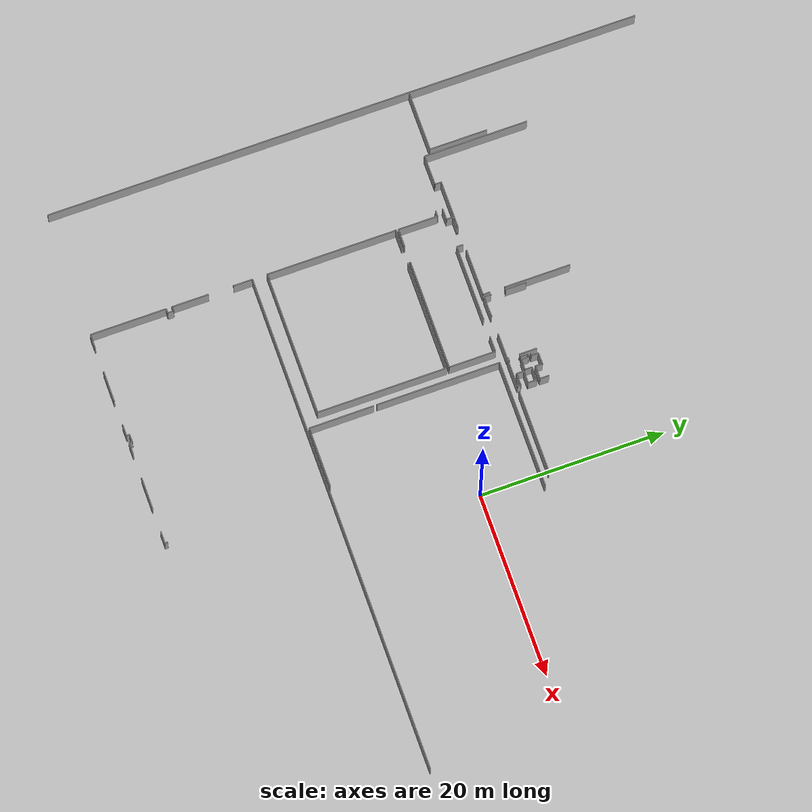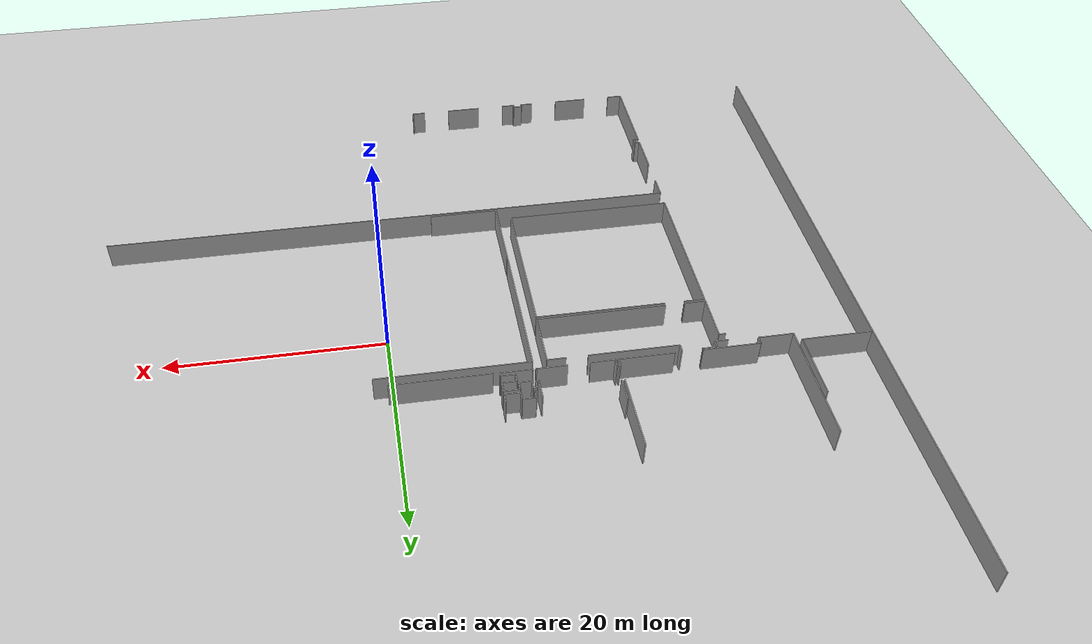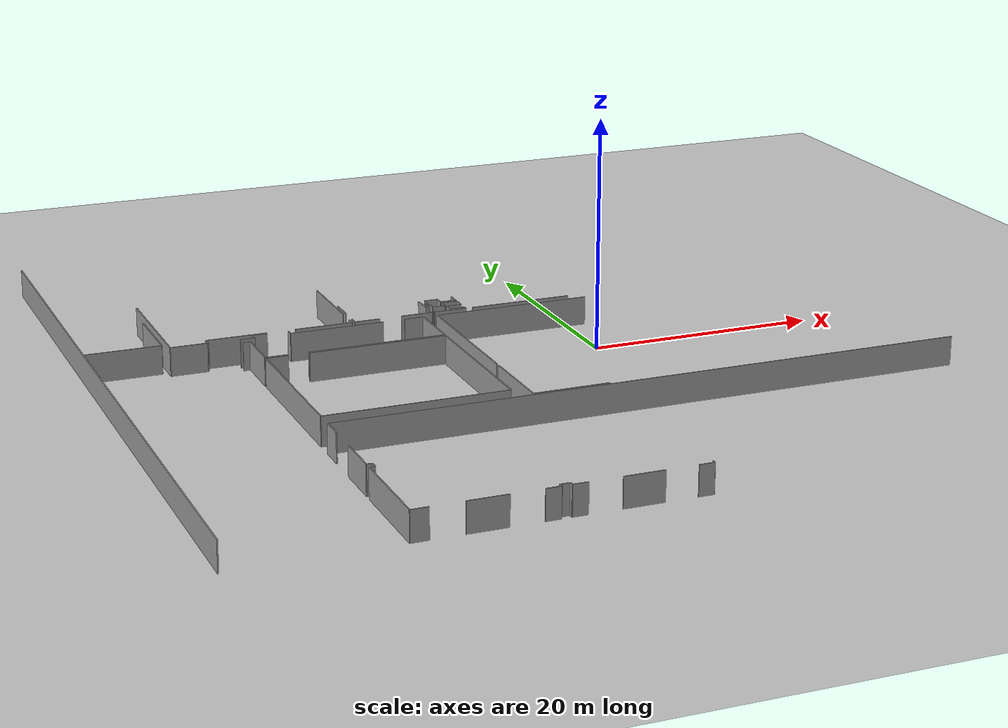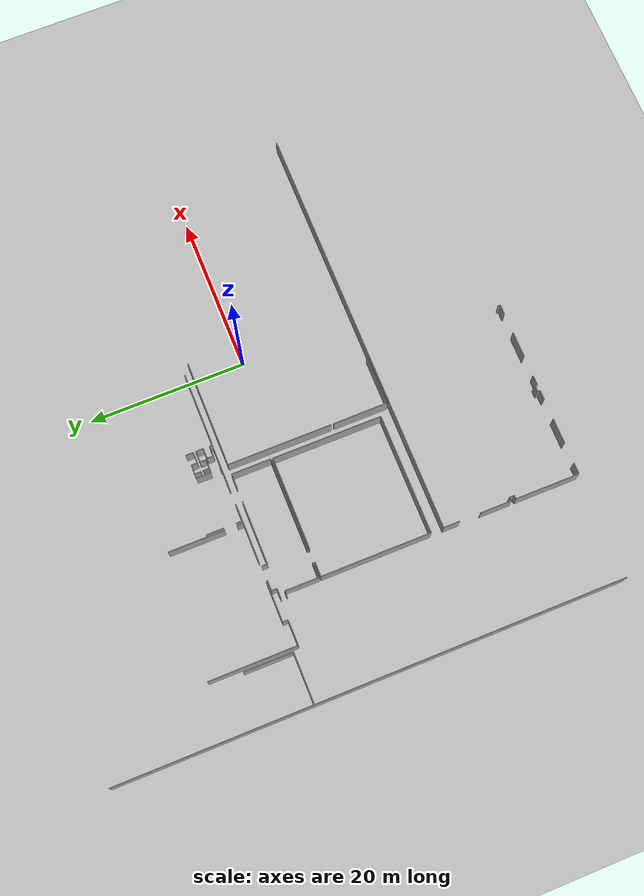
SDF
<sdf version="1.6">
 <world name="default">
  <model name="ground_plane">
   <static>1</static>
   <link name="link">
    <collision name="collision">
     <geometry><plane><normal>0 0 1</normal><size>100 100</size></plane></geometry>
     <surface><friction><ode><mu>100</mu><mu2>50</mu2></ode></friction></surface>
    </collision>
    <visual name="visual">
     <cast_shadows>0</cast_shadows>
     <geometry><plane><normal>0 0 1</normal><size>100 100</size></plane></geometry>
     <material>
      <script><uri>file://media/materials/scripts/gazebo.material</uri><name>Gazebo/Grey</name></script>
     </material>
    </visual>
   </link>
  </model>
  <model name="50052749">
   <static>1</static>
   <link name="Wall_5">
    <collision name="Wall_5_Collision">
     <geometry><box><size>6.41410580878 0.1 2.5</size></box></geometry>
     <pose>3.20705290439 0 1.25 0 0 0</pose>
    </collision>
    <visual name="Wall_5_Visual">
     <pose>3.20705290439 0 1.25 0 0 0</pose>
     <geometry><box><size>6.41410580878 0.1 2.5</size></box></geometry>
     <material>
      <script><uri>file://media/materials/scripts/gazebo.material</uri><name>Gazebo/Grey</name></script>
      <ambient>1 1 1 1</ambient>
     </material>
    </visual>
    <pose>0.105874715343 -24.942688178 0 0 0 0.0</pose>
   </link>
   <link name="Wall_6">
    <collision name="Wall_6_Collision">
     <geometry><box><size>6.22048821557 0.1 2.5</size></box></geometry>
     <pose>3.11024410779 0 1.25 0 0 0</pose>
    </collision>
    <visual name="Wall_6_Visual">
     <pose>3.11024410779 0 1.25 0 0 0</pose>
     <geometry><box><size>6.22048821557 0.1 2.5</size></box></geometry>
     <material>
      <script><uri>file://media/materials/scripts/gazebo.material</uri><name>Gazebo/Grey</name></script>
      <ambient>1 1 1 1</ambient>
     </material>
    </visual>
    <pose>6.51998052412 -24.942688178 0 0 0 1.57079632679</pose>
   </link>
   <link name="Wall_43">
    <collision name="Wall_43_Collision">
     <geometry><box><size>11.2463038947 0.1 2.5</size></box></geometry>
     <pose>5.62315194733 0 1.25 0 0 0</pose>
    </collision>
    <visual name="Wall_43_Visual">
     <pose>5.62315194733 0 1.25 0 0 0</pose>
     <geometry><box><size>11.2463038947 0.1 2.5</size></box></geometry>
     <material>
      <script><uri>file://media/materials/scripts/gazebo.material</uri><name>Gazebo/Grey</name></script>
      <ambient>1 1 1 1</ambient>
     </material>
    </visual>
    <pose>7.02817915777 -25.73846029 0 0 0 1.57079632679</pose>
   </link>
   <link name="Wall_56">
    <collision name="Wall_56_Collision">
     <geometry><box><size>5.21055754766 0.1 2.5</size></box></geometry>
     <pose>2.60527877383 0 1.25 0 0 0</pose>
    </collision>
    <visual name="Wall_56_Visual">
     <pose>2.60527877383 0 1.25 0 0 0</pose>
     <geometry><box><size>5.21055754766 0.1 2.5</size></box></geometry>
     <material>
      <script><uri>file://media/materials/scripts/gazebo.material</uri><name>Gazebo/Grey</name></script>
      <ambient>1 1 1 1</ambient>
     </material>
    </visual>
    <pose>15.4535241699 -25.0366440632 0 0 0 3.14159265359</pose>
   </link>
   <link name="Wall_57">
    <collision name="Wall_57_Collision">
     <geometry><box><size>0.687741863496 0.1 2.5</size></box></geometry>
     <pose>0.343870931748 0 1.25 0 0 0</pose>
    </collision>
    <visual name="Wall_57_Visual">
     <pose>0.343870931748 0 1.25 0 0 0</pose>
     <geometry><box><size>0.687741863496 0.1 2.5</size></box></geometry>
     <material>
      <script><uri>file://media/materials/scripts/gazebo.material</uri><name>Gazebo/Grey</name></script>
      <ambient>1 1 1 1</ambient>
     </material>
    </visual>
    <pose>10.2429666222 -25.0366440632 0 0 0 -1.57079632679</pose>
   </link>
   <link name="Wall_58">
    <collision name="Wall_58_Collision">
     <geometry><box><size>0.0724005538452 0.1 2.5</size></box></geometry>
     <pose>0.0362002769226 0 1.25 0 0 0</pose>
    </collision>
    <visual name="Wall_58_Visual">
     <pose>0.0362002769226 0 1.25 0 0 0</pose>
     <geometry><box><size>0.0724005538452 0.1 2.5</size></box></geometry>
     <material>
      <script><uri>file://media/materials/scripts/gazebo.material</uri><name>Gazebo/Grey</name></script>
      <ambient>1 1 1 1</ambient>
     </material>
    </visual>
    <pose>10.2429666222 -25.7243859267 0 0 0 3.14159265359</pose>
   </link>
   <link name="Wall_59">
    <collision name="Wall_59_Collision">
     <geometry><box><size>3.1424184291 0.1 2.5</size></box></geometry>
     <pose>1.57120921455 0 1.25 0 0 0</pose>
    </collision>
    <visual name="Wall_59_Visual">
     <pose>1.57120921455 0 1.25 0 0 0</pose>
     <geometry><box><size>3.1424184291 0.1 2.5</size></box></geometry>
     <material>
      <script><uri>file://media/materials/scripts/gazebo.material</uri><name>Gazebo/Grey</name></script>
      <ambient>1 1 1 1</ambient>
     </material>
    </visual>
    <pose>10.1705660684 -25.7243859267 0 0 0 -3.13711380689</pose>
   </link>
   <link name="Wall_186">
    <collision name="Wall_186_Collision">
     <geometry><box><size>8.99694167888 0.1 2.5</size></box></geometry>
     <pose>4.49847083944 0 1.25 0 0 0</pose>
    </collision>
    <visual name="Wall_186_Visual">
     <pose>4.49847083944 0 1.25 0 0 0</pose>
     <geometry><box><size>8.99694167888 0.1 2.5</size></box></geometry>
     <material>
      <script><uri>file://media/materials/scripts/gazebo.material</uri><name>Gazebo/Grey</name></script>
      <ambient>1 1 1 1</ambient>
     </material>
    </visual>
    <pose>33.9592832472 -25.0218089234 0 0 0 0.0</pose>
   </link>
   <link name="Wall_241">
    <collision name="Wall_241_Collision">
     <geometry><box><size>5.03456460767 0.1 2.5</size></box></geometry>
     <pose>2.51728230383 0 1.25 0 0 0</pose>
    </collision>
    <visual name="Wall_241_Visual">
     <pose>2.51728230383 0 1.25 0 0 0</pose>
     <geometry><box><size>5.03456460767 0.1 2.5</size></box></geometry>
     <material>
      <script><uri>file://media/materials/scripts/gazebo.material</uri><name>Gazebo/Grey</name></script>
      <ambient>1 1 1 1</ambient>
     </material>
    </visual>
    <pose>17.9761319085 -25.0414623137 0 0 0 0.0</pose>
   </link>
   <link name="Wall_242">
    <collision name="Wall_242_Collision">
     <geometry><box><size>0.802492303479 0.1 2.5</size></box></geometry>
     <pose>0.401246151739 0 1.25 0 0 0</pose>
    </collision>
    <visual name="Wall_242_Visual">
     <pose>0.401246151739 0 1.25 0 0 0</pose>
     <geometry><box><size>0.802492303479 0.1 2.5</size></box></geometry>
     <material>
      <script><uri>file://media/materials/scripts/gazebo.material</uri><name>Gazebo/Grey</name></script>
      <ambient>1 1 1 1</ambient>
     </material>
    </visual>
    <pose>23.0106965162 -25.0414623137 0 0 0 1.57079632679</pose>
   </link>
   <link name="Wall_243">
    <collision name="Wall_243_Collision">
     <geometry><box><size>7.1397596961 0.1 2.5</size></box></geometry>
     <pose>3.56987984805 0 1.25 0 0 0</pose>
    </collision>
    <visual name="Wall_243_Visual">
     <pose>3.56987984805 0 1.25 0 0 0</pose>
     <geometry><box><size>7.1397596961 0.1 2.5</size></box></geometry>
     <material>
      <script><uri>file://media/materials/scripts/gazebo.material</uri><name>Gazebo/Grey</name></script>
      <ambient>1 1 1 1</ambient>
     </material>
    </visual>
    <pose>23.0106965162 -22.6694883018 0 0 0 1.57079632679</pose>
   </link>
   <link name="Wall_248">
    <collision name="Wall_248_Collision">
     <geometry><box><size>0.776499109892 0.1 2.5</size></box></geometry>
     <pose>0.388249554946 0 1.25 0 0 0</pose>
    </collision>
    <visual name="Wall_248_Visual">
     <pose>0.388249554946 0 1.25 0 0 0</pose>
     <geometry><box><size>0.776499109892 0.1 2.5</size></box></geometry>
     <material>
      <script><uri>file://media/materials/scripts/gazebo.material</uri><name>Gazebo/Grey</name></script>
      <ambient>1 1 1 1</ambient>
     </material>
    </visual>
    <pose>23.2791237885 -25.0289095031 0 0 0 1.57079632679</pose>
   </link>
   <link name="Wall_249">
    <collision name="Wall_249_Collision">
     <geometry><box><size>2.23782377376 0.1 2.5</size></box></geometry>
     <pose>1.11891188688 0 1.25 0 0 0</pose>
    </collision>
    <visual name="Wall_249_Visual">
     <pose>1.11891188688 0 1.25 0 0 0</pose>
     <geometry><box><size>2.23782377376 0.1 2.5</size></box></geometry>
     <material>
      <script><uri>file://media/materials/scripts/gazebo.material</uri><name>Gazebo/Grey</name></script>
      <ambient>1 1 1 1</ambient>
     </material>
    </visual>
    <pose>23.2791237885 -22.6606125772 0 0 0 1.57079632679</pose>
   </link>
   <link name="Wall_252">
    <collision name="Wall_252_Collision">
     <geometry><box><size>1.88304838031 0.1 2.5</size></box></geometry>
     <pose>0.941524190154 0 1.25 0 0 0</pose>
    </collision>
    <visual name="Wall_252_Visual">
     <pose>0.941524190154 0 1.25 0 0 0</pose>
     <geometry><box><size>1.88304838031 0.1 2.5</size></box></geometry>
     <material>
      <script><uri>file://media/materials/scripts/gazebo.material</uri><name>Gazebo/Grey</name></script>
      <ambient>1 1 1 1</ambient>
     </material>
    </visual>
    <pose>30.2388330704 -21.7743080739 0 0 0 -1.57079632679</pose>
   </link>
   <link name="Wall_253">
    <collision name="Wall_253_Collision">
     <geometry><box><size>0.172315854073 0.1 2.5</size></box></geometry>
     <pose>0.0861579270365 0 1.25 0 0 0</pose>
    </collision>
    <visual name="Wall_253_Visual">
     <pose>0.0861579270365 0 1.25 0 0 0</pose>
     <geometry><box><size>0.172315854073 0.1 2.5</size></box></geometry>
     <material>
      <script><uri>file://media/materials/scripts/gazebo.material</uri><name>Gazebo/Grey</name></script>
      <ambient>1 1 1 1</ambient>
     </material>
    </visual>
    <pose>30.2388330704 -24.8234998757 0 0 0 -1.57079632679</pose>
   </link>
   <link name="Wall_254">
    <collision name="Wall_254_Collision">
     <geometry><box><size>2.78799190534 0.1 2.5</size></box></geometry>
     <pose>1.39399595267 0 1.25 0 0 0</pose>
    </collision>
    <visual name="Wall_254_Visual">
     <pose>1.39399595267 0 1.25 0 0 0</pose>
     <geometry><box><size>2.78799190534 0.1 2.5</size></box></geometry>
     <material>
      <script><uri>file://media/materials/scripts/gazebo.material</uri><name>Gazebo/Grey</name></script>
      <ambient>1 1 1 1</ambient>
     </material>
    </visual>
    <pose>30.2388330704 -24.9958157298 0 0 0 3.14159265359</pose>
   </link>
   <link name="Wall_255">
    <collision name="Wall_255_Collision">
     <geometry><box><size>2.20155525348 0.1 2.5</size></box></geometry>
     <pose>1.10077762674 0 1.25 0 0 0</pose>
    </collision>
    <visual name="Wall_255_Visual">
     <pose>1.10077762674 0 1.25 0 0 0</pose>
     <geometry><box><size>2.20155525348 0.1 2.5</size></box></geometry>
     <material>
      <script><uri>file://media/materials/scripts/gazebo.material</uri><name>Gazebo/Grey</name></script>
      <ambient>1 1 1 1</ambient>
     </material>
    </visual>
    <pose>25.4804302951 -24.9958157298 0 0 0 -3.12656008982</pose>
   </link>
   <link name="Wall_256">
    <collision name="Wall_256_Collision">
     <geometry><box><size>0.231910005224 0.1 2.5</size></box></geometry>
     <pose>0.115955002612 0 1.25 0 0 0</pose>
    </collision>
    <visual name="Wall_256_Visual">
     <pose>0.115955002612 0 1.25 0 0 0</pose>
     <geometry><box><size>0.231910005224 0.1 2.5</size></box></geometry>
     <material>
      <script><uri>file://media/materials/scripts/gazebo.material</uri><name>Gazebo/Grey</name></script>
      <ambient>1 1 1 1</ambient>
     </material>
    </visual>
    <pose>30.5360430498 -22.5680514488 0 0 0 0.0</pose>
   </link>
   <link name="Wall_257">
    <collision name="Wall_257_Collision">
     <geometry><box><size>0.782965709272 0.1 2.5</size></box></geometry>
     <pose>0.391482854636 0 1.25 0 0 0</pose>
    </collision>
    <visual name="Wall_257_Visual">
     <pose>0.391482854636 0 1.25 0 0 0</pose>
     <geometry><box><size>0.782965709272 0.1 2.5</size></box></geometry>
     <material>
      <script><uri>file://media/materials/scripts/gazebo.material</uri><name>Gazebo/Grey</name></script>
      <ambient>1 1 1 1</ambient>
     </material>
    </visual>
    <pose>30.767953055 -22.5680514488 0 0 0 1.57079632679</pose>
   </link>
   <link name="Wall_258">
    <collision name="Wall_258_Collision">
     <geometry><box><size>1.19619408927 0.1 2.5</size></box></geometry>
     <pose>0.598097044637 0 1.25 0 0 0</pose>
    </collision>
    <visual name="Wall_258_Visual">
     <pose>0.598097044637 0 1.25 0 0 0</pose>
     <geometry><box><size>1.19619408927 0.1 2.5</size></box></geometry>
     <material>
      <script><uri>file://media/materials/scripts/gazebo.material</uri><name>Gazebo/Grey</name></script>
      <ambient>1 1 1 1</ambient>
     </material>
    </visual>
    <pose>30.767953055 -21.7850857395 0 0 0 0.0</pose>
   </link>
   <link name="Wall_259">
    <collision name="Wall_259_Collision">
     <geometry><box><size>0.761156785872 0.1 2.5</size></box></geometry>
     <pose>0.380578392936 0 1.25 0 0 0</pose>
    </collision>
    <visual name="Wall_259_Visual">
     <pose>0.380578392936 0 1.25 0 0 0</pose>
     <geometry><box><size>0.761156785872 0.1 2.5</size></box></geometry>
     <material>
      <script><uri>file://media/materials/scripts/gazebo.material</uri><name>Gazebo/Grey</name></script>
      <ambient>1 1 1 1</ambient>
     </material>
    </visual>
    <pose>31.9641471443 -21.7850857395 0 0 0 -1.57079632679</pose>
   </link>
   <link name="Wall_260">
    <collision name="Wall_260_Collision">
     <geometry><box><size>1.40642196716 0.1 2.5</size></box></geometry>
     <pose>0.703210983582 0 1.25 0 0 0</pose>
    </collision>
    <visual name="Wall_260_Visual">
     <pose>0.703210983582 0 1.25 0 0 0</pose>
     <geometry><box><size>1.40642196716 0.1 2.5</size></box></geometry>
     <material>
      <script><uri>file://media/materials/scripts/gazebo.material</uri><name>Gazebo/Grey</name></script>
      <ambient>1 1 1 1</ambient>
     </material>
    </visual>
    <pose>31.9641471443 -22.5462425254 0 0 0 0.0</pose>
   </link>
   <link name="Wall_261">
    <collision name="Wall_261_Collision">
     <geometry><box><size>0.971384663762 0.1 2.5</size></box></geometry>
     <pose>0.485692331881 0 1.25 0 0 0</pose>
    </collision>
    <visual name="Wall_261_Visual">
     <pose>0.485692331881 0 1.25 0 0 0</pose>
     <geometry><box><size>0.971384663762 0.1 2.5</size></box></geometry>
     <material>
      <script><uri>file://media/materials/scripts/gazebo.material</uri><name>Gazebo/Grey</name></script>
      <ambient>1 1 1 1</ambient>
     </material>
    </visual>
    <pose>33.3705691115 -22.5462425254 0 0 0 1.57079632679</pose>
   </link>
   <link name="Wall_269">
    <collision name="Wall_269_Collision">
     <geometry><box><size>0.166863623223 0.1 2.5</size></box></geometry>
     <pose>0.0834318116115 0 1.25 0 0 0</pose>
    </collision>
    <visual name="Wall_269_Visual">
     <pose>0.0834318116115 0 1.25 0 0 0</pose>
     <geometry><box><size>0.166863623223 0.1 2.5</size></box></geometry>
     <material>
      <script><uri>file://media/materials/scripts/gazebo.material</uri><name>Gazebo/Grey</name></script>
      <ambient>1 1 1 1</ambient>
     </material>
    </visual>
    <pose>30.5078943231 -24.9965765062 0 0 0 1.57079632679</pose>
   </link>
   <link name="Wall_270">
    <collision name="Wall_270_Collision">
     <geometry><box><size>0.772948820036 0.1 2.5</size></box></geometry>
     <pose>0.386474410018 0 1.25 0 0 0</pose>
    </collision>
    <visual name="Wall_270_Visual">
     <pose>0.386474410018 0 1.25 0 0 0</pose>
     <geometry><box><size>0.772948820036 0.1 2.5</size></box></geometry>
     <material>
      <script><uri>file://media/materials/scripts/gazebo.material</uri><name>Gazebo/Grey</name></script>
      <ambient>1 1 1 1</ambient>
     </material>
    </visual>
    <pose>30.5078943231 -23.6545669407 0 0 0 1.57079632679</pose>
   </link>
   <link name="Wall_271">
    <collision name="Wall_271_Collision">
     <geometry><box><size>0.307226868594 0.1 2.5</size></box></geometry>
     <pose>0.153613434297 0 1.25 0 0 0</pose>
    </collision>
    <visual name="Wall_271_Visual">
     <pose>0.153613434297 0 1.25 0 0 0</pose>
     <geometry><box><size>0.307226868594 0.1 2.5</size></box></geometry>
     <material>
      <script><uri>file://media/materials/scripts/gazebo.material</uri><name>Gazebo/Grey</name></script>
      <ambient>1 1 1 1</ambient>
     </material>
    </visual>
    <pose>30.5078943231 -22.8816181207 0 0 0 0.0</pose>
   </link>
   <link name="Wall_272">
    <collision name="Wall_272_Collision">
     <geometry><box><size>0.794757743436 0.1 2.5</size></box></geometry>
     <pose>0.397378871718 0 1.25 0 0 0</pose>
    </collision>
    <visual name="Wall_272_Visual">
     <pose>0.397378871718 0 1.25 0 0 0</pose>
     <geometry><box><size>0.794757743436 0.1 2.5</size></box></geometry>
     <material>
      <script><uri>file://media/materials/scripts/gazebo.material</uri><name>Gazebo/Grey</name></script>
      <ambient>1 1 1 1</ambient>
     </material>
    </visual>
    <pose>30.8151211917 -22.8816181207 0 0 0 -1.57079632679</pose>
   </link>
   <link name="Wall_273">
    <collision name="Wall_273_Collision">
     <geometry><box><size>1.13469799713 0.1 2.5</size></box></geometry>
     <pose>0.567348998565 0 1.25 0 0 0</pose>
    </collision>
    <visual name="Wall_273_Visual">
     <pose>0.567348998565 0 1.25 0 0 0</pose>
     <geometry><box><size>1.13469799713 0.1 2.5</size></box></geometry>
     <material>
      <script><uri>file://media/materials/scripts/gazebo.material</uri><name>Gazebo/Grey</name></script>
      <ambient>1 1 1 1</ambient>
     </material>
    </visual>
    <pose>30.8151211917 -23.6763758641 0 0 0 0.0</pose>
   </link>
   <link name="Wall_274">
    <collision name="Wall_274_Collision">
     <geometry><box><size>0.794757743436 0.1 2.5</size></box></geometry>
     <pose>0.397378871718 0 1.25 0 0 0</pose>
    </collision>
    <visual name="Wall_274_Visual">
     <pose>0.397378871718 0 1.25 0 0 0</pose>
     <geometry><box><size>0.794757743436 0.1 2.5</size></box></geometry>
     <material>
      <script><uri>file://media/materials/scripts/gazebo.material</uri><name>Gazebo/Grey</name></script>
      <ambient>1 1 1 1</ambient>
     </material>
    </visual>
    <pose>31.9498191888 -23.6763758641 0 0 0 1.57079632679</pose>
   </link>
   <link name="Wall_275">
    <collision name="Wall_275_Collision">
     <geometry><box><size>1.41986235019 0.1 2.5</size></box></geometry>
     <pose>0.709931175095 0 1.25 0 0 0</pose>
    </collision>
    <visual name="Wall_275_Visual">
     <pose>0.709931175095 0 1.25 0 0 0</pose>
     <geometry><box><size>1.41986235019 0.1 2.5</size></box></geometry>
     <material>
      <script><uri>file://media/materials/scripts/gazebo.material</uri><name>Gazebo/Grey</name></script>
      <ambient>1 1 1 1</ambient>
     </material>
    </visual>
    <pose>31.9498191888 -22.8816181207 0 0 0 0.0</pose>
   </link>
   <link name="Wall_276">
    <collision name="Wall_276_Collision">
     <geometry><box><size>0.964791268316 0.1 2.5</size></box></geometry>
     <pose>0.482395634158 0 1.25 0 0 0</pose>
    </collision>
    <visual name="Wall_276_Visual">
     <pose>0.482395634158 0 1.25 0 0 0</pose>
     <geometry><box><size>0.964791268316 0.1 2.5</size></box></geometry>
     <material>
      <script><uri>file://media/materials/scripts/gazebo.material</uri><name>Gazebo/Grey</name></script>
      <ambient>1 1 1 1</ambient>
     </material>
    </visual>
    <pose>33.369681539 -22.8816181207 0 0 0 -1.57079632679</pose>
   </link>
   <link name="Wall_277">
    <collision name="Wall_277_Collision">
     <geometry><box><size>1.30473152201 0.1 2.5</size></box></geometry>
     <pose>0.652365761005 0 1.25 0 0 0</pose>
    </collision>
    <visual name="Wall_277_Visual">
     <pose>0.652365761005 0 1.25 0 0 0</pose>
     <geometry><box><size>1.30473152201 0.1 2.5</size></box></geometry>
     <material>
      <script><uri>file://media/materials/scripts/gazebo.material</uri><name>Gazebo/Grey</name></script>
      <ambient>1 1 1 1</ambient>
     </material>
    </visual>
    <pose>33.369681539 -23.846409389 0 0 0 3.14159265359</pose>
   </link>
   <link name="Wall_278">
    <collision name="Wall_278_Collision">
     <geometry><box><size>0.789305512586 0.1 2.5</size></box></geometry>
     <pose>0.394652756293 0 1.25 0 0 0</pose>
    </collision>
    <visual name="Wall_278_Visual">
     <pose>0.394652756293 0 1.25 0 0 0</pose>
     <geometry><box><size>0.789305512586 0.1 2.5</size></box></geometry>
     <material>
      <script><uri>file://media/materials/scripts/gazebo.material</uri><name>Gazebo/Grey</name></script>
      <ambient>1 1 1 1</ambient>
     </material>
    </visual>
    <pose>32.064950017 -23.846409389 0 0 0 -1.57079632679</pose>
   </link>
   <link name="Wall_279">
    <collision name="Wall_279_Collision">
     <geometry><box><size>1.30473152201 0.1 2.5</size></box></geometry>
     <pose>0.652365761005 0 1.25 0 0 0</pose>
    </collision>
    <visual name="Wall_279_Visual">
     <pose>0.652365761005 0 1.25 0 0 0</pose>
     <geometry><box><size>1.30473152201 0.1 2.5</size></box></geometry>
     <material>
      <script><uri>file://media/materials/scripts/gazebo.material</uri><name>Gazebo/Grey</name></script>
      <ambient>1 1 1 1</ambient>
     </material>
    </visual>
    <pose>32.064950017 -24.6357149016 0 0 0 0.0</pose>
   </link>
   <link name="Wall_280">
    <collision name="Wall_280_Collision">
     <geometry><box><size>0.356296946244 0.1 2.5</size></box></geometry>
     <pose>0.178148473122 0 1.25 0 0 0</pose>
    </collision>
    <visual name="Wall_280_Visual">
     <pose>0.178148473122 0 1.25 0 0 0</pose>
     <geometry><box><size>0.356296946244 0.1 2.5</size></box></geometry>
     <material>
      <script><uri>file://media/materials/scripts/gazebo.material</uri><name>Gazebo/Grey</name></script>
      <ambient>1 1 1 1</ambient>
     </material>
    </visual>
    <pose>33.369681539 -24.6357149016 0 0 0 -1.57079632679</pose>
   </link>
   <link name="Wall_281">
    <collision name="Wall_281_Collision">
     <geometry><box><size>2.86179085631 0.1 2.5</size></box></geometry>
     <pose>1.43089542816 0 1.25 0 0 0</pose>
    </collision>
    <visual name="Wall_281_Visual">
     <pose>1.43089542816 0 1.25 0 0 0</pose>
     <geometry><box><size>2.86179085631 0.1 2.5</size></box></geometry>
     <material>
      <script><uri>file://media/materials/scripts/gazebo.material</uri><name>Gazebo/Grey</name></script>
      <ambient>1 1 1 1</ambient>
     </material>
    </visual>
    <pose>33.369681539 -24.9920118478 0 0 0 -3.13999761728</pose>
   </link>
   <link name="Wall_282">
    <collision name="Wall_282_Collision">
     <geometry><box><size>1.92730020744 0.1 2.5</size></box></geometry>
     <pose>0.963650103719 0 1.25 0 0 0</pose>
    </collision>
    <visual name="Wall_282_Visual">
     <pose>0.963650103719 0 1.25 0 0 0</pose>
     <geometry><box><size>1.92730020744 0.1 2.5</size></box></geometry>
     <material>
      <script><uri>file://media/materials/scripts/gazebo.material</uri><name>Gazebo/Grey</name></script>
      <ambient>1 1 1 1</ambient>
     </material>
    </visual>
    <pose>13.5373820163 -30.9199815385 0 0 0 0.0</pose>
   </link>
   <link name="Wall_283">
    <collision name="Wall_283_Collision">
     <geometry><box><size>11.8807914103 0.1 2.5</size></box></geometry>
     <pose>5.94039570516 0 1.25 0 0 0</pose>
    </collision>
    <visual name="Wall_283_Visual">
     <pose>5.94039570516 0 1.25 0 0 0</pose>
     <geometry><box><size>11.8807914103 0.1 2.5</size></box></geometry>
     <material>
      <script><uri>file://media/materials/scripts/gazebo.material</uri><name>Gazebo/Grey</name></script>
      <ambient>1 1 1 1</ambient>
     </material>
    </visual>
    <pose>17.2398271516 -30.9199815385 0 0 0 0.0</pose>
   </link>
   <link name="Wall_284">
    <collision name="Wall_284_Collision">
     <geometry><box><size>5.04394751657 0.1 2.5</size></box></geometry>
     <pose>2.52197375829 0 1.25 0 0 0</pose>
    </collision>
    <visual name="Wall_284_Visual">
     <pose>2.52197375829 0 1.25 0 0 0</pose>
     <geometry><box><size>5.04394751657 0.1 2.5</size></box></geometry>
     <material>
      <script><uri>file://media/materials/scripts/gazebo.material</uri><name>Gazebo/Grey</name></script>
      <ambient>1 1 1 1</ambient>
     </material>
    </visual>
    <pose>29.1206185619 -30.9199815385 0 0 0 1.57079632679</pose>
   </link>
   <link name="Wall_285">
    <collision name="Wall_285_Collision">
     <geometry><box><size>1.68664127364 0.1 2.5</size></box></geometry>
     <pose>0.843320636821 0 1.25 0 0 0</pose>
    </collision>
    <visual name="Wall_285_Visual">
     <pose>0.843320636821 0 1.25 0 0 0</pose>
     <geometry><box><size>1.68664127364 0.1 2.5</size></box></geometry>
     <material>
      <script><uri>file://media/materials/scripts/gazebo.material</uri><name>Gazebo/Grey</name></script>
      <ambient>1 1 1 1</ambient>
     </material>
    </visual>
    <pose>29.1206185619 -25.8760340219 0 0 0 3.14159265359</pose>
   </link>
   <link name="Wall_286">
    <collision name="Wall_286_Collision">
     <geometry><box><size>8.18874355242 0.1 2.5</size></box></geometry>
     <pose>4.09437177621 0 1.25 0 0 0</pose>
    </collision>
    <visual name="Wall_286_Visual">
     <pose>4.09437177621 0 1.25 0 0 0</pose>
     <geometry><box><size>8.18874355242 0.1 2.5</size></box></geometry>
     <material>
      <script><uri>file://media/materials/scripts/gazebo.material</uri><name>Gazebo/Grey</name></script>
      <ambient>1 1 1 1</ambient>
     </material>
    </visual>
    <pose>25.4975477641 -25.8760340219 0 0 0 3.14159265359</pose>
   </link>
   <link name="Wall_287">
    <collision name="Wall_287_Collision">
     <geometry><box><size>0.703084187516 0.1 2.5</size></box></geometry>
     <pose>0.351542093758 0 1.25 0 0 0</pose>
    </collision>
    <visual name="Wall_287_Visual">
     <pose>0.351542093758 0 1.25 0 0 0</pose>
     <geometry><box><size>0.703084187516 0.1 2.5</size></box></geometry>
     <material>
      <script><uri>file://media/materials/scripts/gazebo.material</uri><name>Gazebo/Grey</name></script>
      <ambient>1 1 1 1</ambient>
     </material>
    </visual>
    <pose>17.3088042117 -25.8760340219 0 0 0 1.57079632679</pose>
   </link>
   <link name="Wall_288">
    <collision name="Wall_288_Collision">
     <geometry><box><size>1.2980113305 0.1 2.5</size></box></geometry>
     <pose>0.649005665248 0 1.25 0 0 0</pose>
    </collision>
    <visual name="Wall_288_Visual">
     <pose>0.649005665248 0 1.25 0 0 0</pose>
     <geometry><box><size>1.2980113305 0.1 2.5</size></box></geometry>
     <material>
      <script><uri>file://media/materials/scripts/gazebo.material</uri><name>Gazebo/Grey</name></script>
      <ambient>1 1 1 1</ambient>
     </material>
    </visual>
    <pose>15.478629791 -25.1729498344 0 0 0 3.14159265359</pose>
   </link>
   <link name="Wall_289">
    <collision name="Wall_289_Collision">
     <geometry><box><size>0.697758752732 0.1 2.5</size></box></geometry>
     <pose>0.348879376366 0 1.25 0 0 0</pose>
    </collision>
    <visual name="Wall_289_Visual">
     <pose>0.348879376366 0 1.25 0 0 0</pose>
     <geometry><box><size>0.697758752732 0.1 2.5</size></box></geometry>
     <material>
      <script><uri>file://media/materials/scripts/gazebo.material</uri><name>Gazebo/Grey</name></script>
      <ambient>1 1 1 1</ambient>
     </material>
    </visual>
    <pose>14.1806184605 -25.1729498344 0 0 0 -1.57079632679</pose>
   </link>
   <link name="Wall_290">
    <collision name="Wall_290_Collision">
     <geometry><box><size>1.23524727769 0.1 2.5</size></box></geometry>
     <pose>0.617623638844 0 1.25 0 0 0</pose>
    </collision>
    <visual name="Wall_290_Visual">
     <pose>0.617623638844 0 1.25 0 0 0</pose>
     <geometry><box><size>1.23524727769 0.1 2.5</size></box></geometry>
     <material>
      <script><uri>file://media/materials/scripts/gazebo.material</uri><name>Gazebo/Grey</name></script>
      <ambient>1 1 1 1</ambient>
     </material>
    </visual>
    <pose>14.1806184605 -25.8707085871 0 0 0 3.14159265359</pose>
   </link>
   <link name="Wall_291">
    <collision name="Wall_291_Collision">
     <geometry><box><size>0.613566164723 0.1 2.5</size></box></geometry>
     <pose>0.306783082362 0 1.25 0 0 0</pose>
    </collision>
    <visual name="Wall_291_Visual">
     <pose>0.306783082362 0 1.25 0 0 0</pose>
     <geometry><box><size>0.613566164723 0.1 2.5</size></box></geometry>
     <material>
      <script><uri>file://media/materials/scripts/gazebo.material</uri><name>Gazebo/Grey</name></script>
      <ambient>1 1 1 1</ambient>
     </material>
    </visual>
    <pose>12.9453711828 -26.6251451815 0 0 0 0.0</pose>
   </link>
   <link name="Wall_292">
    <collision name="Wall_292_Collision">
     <geometry><box><size>4.29489044862 0.1 2.5</size></box></geometry>
     <pose>2.14744522431 0 1.25 0 0 0</pose>
    </collision>
    <visual name="Wall_292_Visual">
     <pose>2.14744522431 0 1.25 0 0 0</pose>
     <geometry><box><size>4.29489044862 0.1 2.5</size></box></geometry>
     <material>
      <script><uri>file://media/materials/scripts/gazebo.material</uri><name>Gazebo/Grey</name></script>
      <ambient>1 1 1 1</ambient>
     </material>
    </visual>
    <pose>13.5589373475 -26.6251451815 0 0 0 -1.57581517932</pose>
   </link>
   <link name="Wall_293">
    <collision name="Wall_293_Collision">
     <geometry><box><size>14.0742365609 0.1 2.5</size></box></geometry>
     <pose>7.03711828044 0 1.25 0 0 0</pose>
    </collision>
    <visual name="Wall_293_Visual">
     <pose>7.03711828044 0 1.25 0 0 0</pose>
     <geometry><box><size>14.0742365609 0.1 2.5</size></box></geometry>
     <material>
      <script><uri>file://media/materials/scripts/gazebo.material</uri><name>Gazebo/Grey</name></script>
      <ambient>1 1 1 1</ambient>
     </material>
    </visual>
    <pose>13.5491740504 -45.2478102319 0 0 0 1.57079632679</pose>
   </link>
   <link name="Wall_294">
    <collision name="Wall_294_Collision">
     <geometry><box><size>1.89686915153 0.1 2.5</size></box></geometry>
     <pose>0.948434575766 0 1.25 0 0 0</pose>
    </collision>
    <visual name="Wall_294_Visual">
     <pose>0.948434575766 0 1.25 0 0 0</pose>
     <geometry><box><size>1.89686915153 0.1 2.5</size></box></geometry>
     <material>
      <script><uri>file://media/materials/scripts/gazebo.material</uri><name>Gazebo/Grey</name></script>
      <ambient>1 1 1 1</ambient>
     </material>
    </visual>
    <pose>13.5491740504 -31.1735736711 0 0 0 0.0</pose>
   </link>
   <link name="Wall_295">
    <collision name="Wall_295_Collision">
     <geometry><box><size>11.8710281132 0.1 2.5</size></box></geometry>
     <pose>5.93551405661 0 1.25 0 0 0</pose>
    </collision>
    <visual name="Wall_295_Visual">
     <pose>5.93551405661 0 1.25 0 0 0</pose>
     <geometry><box><size>11.8710281132 0.1 2.5</size></box></geometry>
     <material>
      <script><uri>file://media/materials/scripts/gazebo.material</uri><name>Gazebo/Grey</name></script>
      <ambient>1 1 1 1</ambient>
     </material>
    </visual>
    <pose>17.2374180263 -31.1735736711 0 0 0 0.0</pose>
   </link>
   <link name="Wall_296">
    <collision name="Wall_296_Collision">
     <geometry><box><size>14.0659948166 0.1 2.5</size></box></geometry>
     <pose>7.03299740829 0 1.25 0 0 0</pose>
    </collision>
    <visual name="Wall_296_Visual">
     <pose>7.03299740829 0 1.25 0 0 0</pose>
     <geometry><box><size>14.0659948166 0.1 2.5</size></box></geometry>
     <material>
      <script><uri>file://media/materials/scripts/gazebo.material</uri><name>Gazebo/Grey</name></script>
      <ambient>1 1 1 1</ambient>
     </material>
    </visual>
    <pose>29.1084461396 -31.1735736711 0 0 0 -1.57079632679</pose>
   </link>
   <link name="Wall_297">
    <collision name="Wall_297_Collision">
     <geometry><box><size>15.559274272 0.1 2.5</size></box></geometry>
     <pose>7.77963713598 0 1.25 0 0 0</pose>
    </collision>
    <visual name="Wall_297_Visual">
     <pose>7.77963713598 0 1.25 0 0 0</pose>
     <geometry><box><size>15.559274272 0.1 2.5</size></box></geometry>
     <material>
      <script><uri>file://media/materials/scripts/gazebo.material</uri><name>Gazebo/Grey</name></script>
      <ambient>1 1 1 1</ambient>
     </material>
    </visual>
    <pose>29.1084461396 -45.2395684876 0 0 0 -3.14106295378</pose>
   </link>
   <link name="Wall_298">
    <collision name="Wall_298_Collision">
     <geometry><box><size>8.25759381641 0.1 2.5</size></box></geometry>
     <pose>4.1287969082 0 1.25 0 0 0</pose>
    </collision>
    <visual name="Wall_298_Visual">
     <pose>4.1287969082 0 1.25 0 0 0</pose>
     <geometry><box><size>8.25759381641 0.1 2.5</size></box></geometry>
     <material>
      <script><uri>file://media/materials/scripts/gazebo.material</uri><name>Gazebo/Grey</name></script>
      <ambient>1 1 1 1</ambient>
     </material>
    </visual>
    <pose>13.5491740504 -64.5152332794 0 0 0 1.57079632679</pose>
   </link>
   <link name="Wall_299">
    <collision name="Wall_299_Collision">
     <geometry><box><size>0.453549529079 0.1 2.5</size></box></geometry>
     <pose>0.22677476454 0 1.25 0 0 0</pose>
    </collision>
    <visual name="Wall_299_Visual">
     <pose>0.22677476454 0 1.25 0 0 0</pose>
     <geometry><box><size>0.453549529079 0.1 2.5</size></box></geometry>
     <material>
      <script><uri>file://media/materials/scripts/gazebo.material</uri><name>Gazebo/Grey</name></script>
      <ambient>1 1 1 1</ambient>
     </material>
    </visual>
    <pose>13.5491740504 -56.257639463 0 0 0 0.0</pose>
   </link>
   <link name="Wall_300">
    <collision name="Wall_300_Collision">
     <geometry><box><size>0.628401304478 0.1 2.5</size></box></geometry>
     <pose>0.314200652239 0 1.25 0 0 0</pose>
    </collision>
    <visual name="Wall_300_Visual">
     <pose>0.314200652239 0 1.25 0 0 0</pose>
     <geometry><box><size>0.628401304478 0.1 2.5</size></box></geometry>
     <material>
      <script><uri>file://media/materials/scripts/gazebo.material</uri><name>Gazebo/Grey</name></script>
      <ambient>1 1 1 1</ambient>
     </material>
    </visual>
    <pose>14.0027235795 -56.257639463 0 0 0 1.57079632679</pose>
   </link>
   <link name="Wall_301">
    <collision name="Wall_301_Collision">
     <geometry><box><size>0.45215477235 0.1 2.5</size></box></geometry>
     <pose>0.226077386175 0 1.25 0 0 0</pose>
    </collision>
    <visual name="Wall_301_Visual">
     <pose>0.226077386175 0 1.25 0 0 0</pose>
     <geometry><box><size>0.45215477235 0.1 2.5</size></box></geometry>
     <material>
      <script><uri>file://media/materials/scripts/gazebo.material</uri><name>Gazebo/Grey</name></script>
      <ambient>1 1 1 1</ambient>
     </material>
    </visual>
    <pose>14.0027235795 -55.6292381585 0 0 0 3.14159265359</pose>
   </link>
   <link name="Wall_302">
    <collision name="Wall_302_Collision">
     <geometry><box><size>3.95819280103 0.1 2.5</size></box></geometry>
     <pose>1.97909640051 0 1.25 0 0 0</pose>
    </collision>
    <visual name="Wall_302_Visual">
     <pose>1.97909640051 0 1.25 0 0 0</pose>
     <geometry><box><size>3.95819280103 0.1 2.5</size></box></geometry>
     <material>
      <script><uri>file://media/materials/scripts/gazebo.material</uri><name>Gazebo/Grey</name></script>
      <ambient>1 1 1 1</ambient>
     </material>
    </visual>
    <pose>13.5505688072 -55.6292381585 0 0 0 1.57079632679</pose>
   </link>
   <link name="Wall_303">
    <collision name="Wall_303_Collision">
     <geometry><box><size>2.08389334929 0.1 2.5</size></box></geometry>
     <pose>1.04194667465 0 1.25 0 0 0</pose>
    </collision>
    <visual name="Wall_303_Visual">
     <pose>1.04194667465 0 1.25 0 0 0</pose>
     <geometry><box><size>2.08389334929 0.1 2.5</size></box></geometry>
     <material>
      <script><uri>file://media/materials/scripts/gazebo.material</uri><name>Gazebo/Grey</name></script>
      <ambient>1 1 1 1</ambient>
     </material>
    </visual>
    <pose>13.5505688072 -48.9475926499 0 0 0 1.57079632679</pose>
   </link>
   <link name="Wall_304">
    <collision name="Wall_304_Collision">
     <geometry><box><size>54.4964421024 0.1 2.5</size></box></geometry>
     <pose>27.2482210512 0 1.25 0 0 0</pose>
    </collision>
    <visual name="Wall_304_Visual">
     <pose>27.2482210512 0 1.25 0 0 0</pose>
     <geometry><box><size>54.4964421024 0.1 2.5</size></box></geometry>
     <material>
      <script><uri>file://media/materials/scripts/gazebo.material</uri><name>Gazebo/Grey</name></script>
      <ambient>1 1 1 1</ambient>
     </material>
    </visual>
    <pose>13.5505688072 -46.8636993006 0 0 0 0.0</pose>
   </link>
   <link name="Wall_324">
    <collision name="Wall_324_Collision">
     <geometry><box><size>0.315215020769 0.1 2.5</size></box></geometry>
     <pose>0.157607510385 0 1.25 0 0 0</pose>
    </collision>
    <visual name="Wall_324_Visual">
     <pose>0.157607510385 0 1.25 0 0 0</pose>
     <geometry><box><size>0.315215020769 0.1 2.5</size></box></geometry>
     <material>
      <script><uri>file://media/materials/scripts/gazebo.material</uri><name>Gazebo/Grey</name></script>
      <ambient>1 1 1 1</ambient>
     </material>
    </visual>
    <pose>36.8806646143 -64.1788433156 0 0 0 -1.57079632679</pose>
   </link>
   <link name="Wall_325">
    <collision name="Wall_325_Collision">
     <geometry><box><size>1.26707309032 0.1 2.5</size></box></geometry>
     <pose>0.633536545162 0 1.25 0 0 0</pose>
    </collision>
    <visual name="Wall_325_Visual">
     <pose>0.633536545162 0 1.25 0 0 0</pose>
     <geometry><box><size>1.26707309032 0.1 2.5</size></box></geometry>
     <material>
      <script><uri>file://media/materials/scripts/gazebo.material</uri><name>Gazebo/Grey</name></script>
      <ambient>1 1 1 1</ambient>
     </material>
    </visual>
    <pose>36.8806646143 -64.4940583363 0 0 0 3.14159265359</pose>
   </link>
   <link name="Wall_326">
    <collision name="Wall_326_Collision">
     <geometry><box><size>3.34741614976 0.1 2.5</size></box></geometry>
     <pose>1.67370807488 0 1.25 0 0 0</pose>
    </collision>
    <visual name="Wall_326_Visual">
     <pose>1.67370807488 0 1.25 0 0 0</pose>
     <geometry><box><size>3.34741614976 0.1 2.5</size></box></geometry>
     <material>
      <script><uri>file://media/materials/scripts/gazebo.material</uri><name>Gazebo/Grey</name></script>
      <ambient>1 1 1 1</ambient>
     </material>
    </visual>
    <pose>32.9785156745 -64.4940583363 0 0 0 3.14159265359</pose>
   </link>
   <link name="Wall_327">
    <collision name="Wall_327_Collision">
     <geometry><box><size>1.25452027976 0.1 2.5</size></box></geometry>
     <pose>0.627260139881 0 1.25 0 0 0</pose>
    </collision>
    <visual name="Wall_327_Visual">
     <pose>0.627260139881 0 1.25 0 0 0</pose>
     <geometry><box><size>1.25452027976 0.1 2.5</size></box></geometry>
     <material>
      <script><uri>file://media/materials/scripts/gazebo.material</uri><name>Gazebo/Grey</name></script>
      <ambient>1 1 1 1</ambient>
     </material>
    </visual>
    <pose>26.9582384476 -64.4940583363 0 0 0 3.14159265359</pose>
   </link>
   <link name="Wall_328">
    <collision name="Wall_328_Collision">
     <geometry><box><size>0.334107634645 0.1 2.5</size></box></geometry>
     <pose>0.167053817322 0 1.25 0 0 0</pose>
    </collision>
    <visual name="Wall_328_Visual">
     <pose>0.167053817322 0 1.25 0 0 0</pose>
     <geometry><box><size>0.334107634645 0.1 2.5</size></box></geometry>
     <material>
      <script><uri>file://media/materials/scripts/gazebo.material</uri><name>Gazebo/Grey</name></script>
      <ambient>1 1 1 1</ambient>
     </material>
    </visual>
    <pose>25.7037181678 -64.4940583363 0 0 0 1.57079632679</pose>
   </link>
   <link name="Wall_329">
    <collision name="Wall_329_Collision">
     <geometry><box><size>0.81948297636 0.1 2.5</size></box></geometry>
     <pose>0.40974148818 0 1.25 0 0 0</pose>
    </collision>
    <visual name="Wall_329_Visual">
     <pose>0.40974148818 0 1.25 0 0 0</pose>
     <geometry><box><size>0.81948297636 0.1 2.5</size></box></geometry>
     <material>
      <script><uri>file://media/materials/scripts/gazebo.material</uri><name>Gazebo/Grey</name></script>
      <ambient>1 1 1 1</ambient>
     </material>
    </visual>
    <pose>25.7037181678 -64.1599507017 0 0 0 3.14159265359</pose>
   </link>
   <link name="Wall_330">
    <collision name="Wall_330_Collision">
     <geometry><box><size>0.340447437959 0.1 2.5</size></box></geometry>
     <pose>0.170223718979 0 1.25 0 0 0</pose>
    </collision>
    <visual name="Wall_330_Visual">
     <pose>0.170223718979 0 1.25 0 0 0</pose>
     <geometry><box><size>0.340447437959 0.1 2.5</size></box></geometry>
     <material>
      <script><uri>file://media/materials/scripts/gazebo.material</uri><name>Gazebo/Grey</name></script>
      <ambient>1 1 1 1</ambient>
     </material>
    </visual>
    <pose>24.8842351915 -64.1599507017 0 0 0 -1.57079632679</pose>
   </link>
   <link name="Wall_331">
    <collision name="Wall_331_Collision">
     <geometry><box><size>1.23562766589 0.1 2.5</size></box></geometry>
     <pose>0.617813832944 0 1.25 0 0 0</pose>
    </collision>
    <visual name="Wall_331_Visual">
     <pose>0.617813832944 0 1.25 0 0 0</pose>
     <geometry><box><size>1.23562766589 0.1 2.5</size></box></geometry>
     <material>
      <script><uri>file://media/materials/scripts/gazebo.material</uri><name>Gazebo/Grey</name></script>
      <ambient>1 1 1 1</ambient>
     </material>
    </visual>
    <pose>24.8842351915 -64.5003981396 0 0 0 3.14159265359</pose>
   </link>
   <link name="Wall_332">
    <collision name="Wall_332_Collision">
     <geometry><box><size>3.29073830813 0.1 2.5</size></box></geometry>
     <pose>1.64536915407 0 1.25 0 0 0</pose>
    </collision>
    <visual name="Wall_332_Visual">
     <pose>1.64536915407 0 1.25 0 0 0</pose>
     <geometry><box><size>3.29073830813 0.1 2.5</size></box></geometry>
     <material>
      <script><uri>file://media/materials/scripts/gazebo.material</uri><name>Gazebo/Grey</name></script>
      <ambient>1 1 1 1</ambient>
     </material>
    </visual>
    <pose>20.9694066451 -64.5003981396 0 0 0 3.14159265359</pose>
   </link>
   <link name="Wall_333">
    <collision name="Wall_333_Collision">
     <geometry><box><size>1.43781713073 0.1 2.5</size></box></geometry>
     <pose>0.718908565365 0 1.25 0 0 0</pose>
    </collision>
    <visual name="Wall_333_Visual">
     <pose>0.718908565365 0 1.25 0 0 0</pose>
     <geometry><box><size>1.43781713073 0.1 2.5</size></box></geometry>
     <material>
      <script><uri>file://media/materials/scripts/gazebo.material</uri><name>Gazebo/Grey</name></script>
      <ambient>1 1 1 1</ambient>
     </material>
    </visual>
    <pose>14.986914646 -64.5003981396 0 0 0 -3.13127464953</pose>
   </link>
   <link name="Wall_367">
    <collision name="Wall_367_Collision">
     <geometry><box><size>6.47940578291 0.1 2.5</size></box></geometry>
     <pose>3.23970289146 0 1.25 0 0 0</pose>
    </collision>
    <visual name="Wall_367_Visual">
     <pose>3.23970289146 0 1.25 0 0 0</pose>
     <geometry><box><size>6.47940578291 0.1 2.5</size></box></geometry>
     <material>
      <script><uri>file://media/materials/scripts/gazebo.material</uri><name>Gazebo/Grey</name></script>
      <ambient>1 1 1 1</ambient>
     </material>
    </visual>
    <pose>30.4051895094 -46.6103607602 0 0 0 0.0</pose>
   </link>
   <link name="Wall_383">
    <collision name="Wall_383_Collision">
     <geometry><box><size>7.02452323806 0.1 2.5</size></box></geometry>
     <pose>3.51226161903 0 1.25 0 0 0</pose>
    </collision>
    <visual name="Wall_383_Visual">
     <pose>3.51226161903 0 1.25 0 0 0</pose>
     <geometry><box><size>7.02452323806 0.1 2.5</size></box></geometry>
     <material>
      <script><uri>file://media/materials/scripts/gazebo.material</uri><name>Gazebo/Grey</name></script>
      <ambient>1 1 1 1</ambient>
     </material>
    </visual>
    <pose>30.3879452444 -39.5858586883 0 0 0 -1.56834145808</pose>
   </link>
   <link name="Wall_422">
    <collision name="Wall_422_Collision">
     <geometry><box><size>13.3878894541 0.1 2.5</size></box></geometry>
     <pose>6.69394472706 0 1.25 0 0 0</pose>
    </collision>
    <visual name="Wall_422_Visual">
     <pose>6.69394472706 0 1.25 0 0 0</pose>
     <geometry><box><size>13.3878894541 0.1 2.5</size></box></geometry>
     <material>
      <script><uri>file://media/materials/scripts/gazebo.material</uri><name>Gazebo/Grey</name></script>
      <ambient>1 1 1 1</ambient>
     </material>
    </visual>
    <pose>30.3850289349 -39.2613875547 0 0 0 1.57079632679</pose>
   </link>
   <link name="Wall_423">
    <collision name="Wall_423_Collision">
     <geometry><box><size>13.8092327824 0.1 2.5</size></box></geometry>
     <pose>6.90461639118 0 1.25 0 0 0</pose>
    </collision>
    <visual name="Wall_423_Visual">
     <pose>6.90461639118 0 1.25 0 0 0</pose>
     <geometry><box><size>13.8092327824 0.1 2.5</size></box></geometry>
     <material>
      <script><uri>file://media/materials/scripts/gazebo.material</uri><name>Gazebo/Grey</name></script>
      <ambient>1 1 1 1</ambient>
     </material>
    </visual>
    <pose>30.3850289349 -25.8734981006 0 0 0 0.0</pose>
   </link>
   <link name="Wall_441">
    <collision name="Wall_441_Collision">
     <geometry><box><size>64.5203051221 0.1 2.5</size></box></geometry>
     <pose>32.260152561 0 1.25 0 0 0</pose>
    </collision>
    <visual name="Wall_441_Visual">
     <pose>32.260152561 0 1.25 0 0 0</pose>
     <geometry><box><size>64.5203051221 0.1 2.5</size></box></geometry>
     <material>
      <script><uri>file://media/materials/scripts/gazebo.material</uri><name>Gazebo/Grey</name></script>
      <ambient>1 1 1 1</ambient>
     </material>
    </visual>
    <pose>0.0 -64.5203051221 0 0 0 1.57079632679</pose>
   </link>
   <pose>-42.45 32.2703051221 0 0 0 0</pose>
  </model>
 </world>
</sdf>
